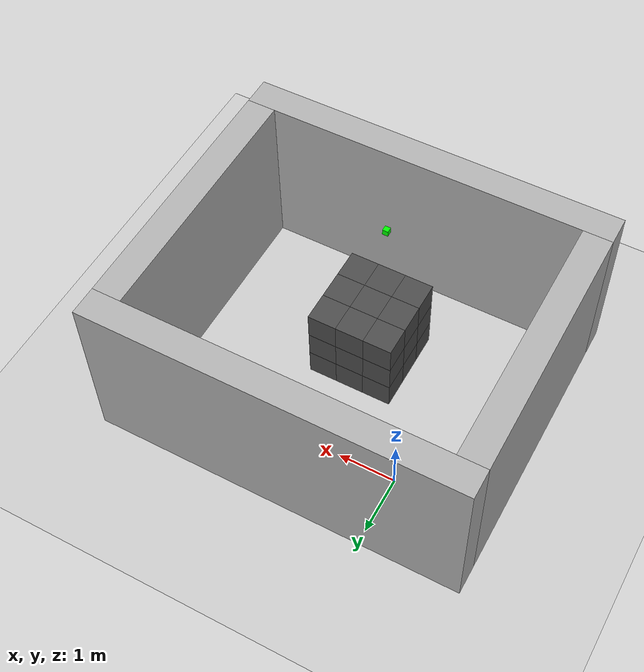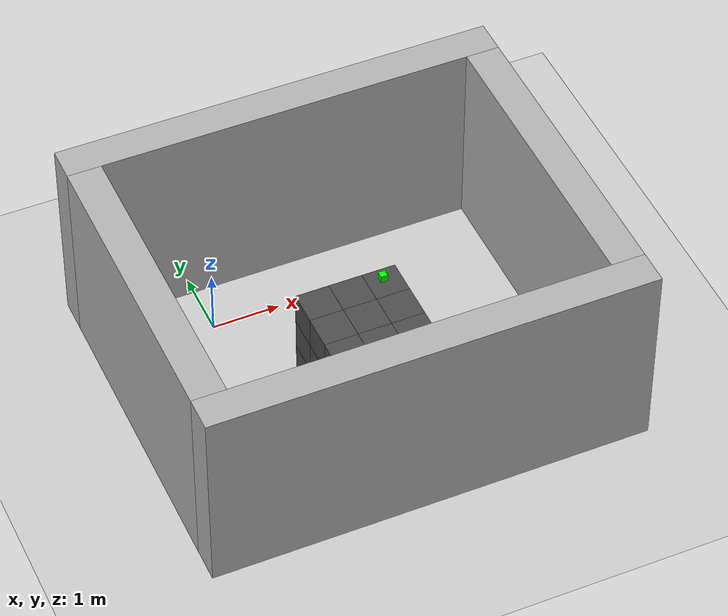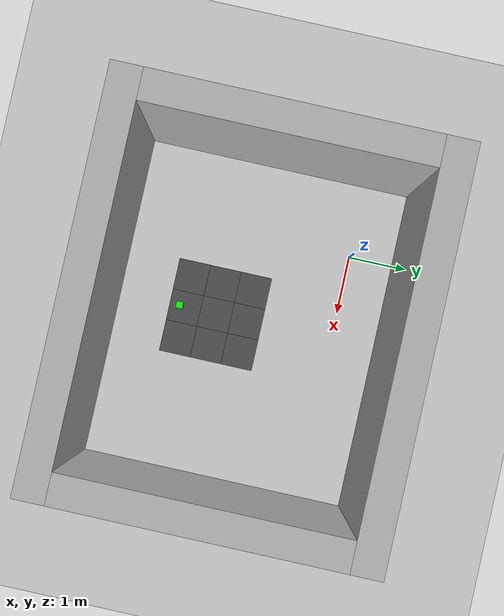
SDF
<sdf version="1.6">
 <world name="default">
  <light name="sun" type="directional">
   <cast_shadows>0</cast_shadows>
   <pose>0 0 10 0 -0 0</pose>
   <diffuse>0.8 0.8 0.8 1</diffuse>
   <specular>0.2 0.2 0.2 1</specular>
   <attenuation>
    <range>1000</range>
    <constant>0.9</constant>
    <linear>0.01</linear>
    <quadratic>0.001</quadratic>
   </attenuation>
   <direction>-0.5 0.1 -0.9</direction>
  </light>
  <include><uri>model://ground_plane</uri></include>
  <gravity>0 0 -9.8</gravity>
  <magnetic_field>6e-06 2.3e-05 -4.2e-05</magnetic_field>
  <atmosphere type="adiabatic"/>
  <physics default="0" name="default_physics" type="ode">
   <max_step_size>0.001</max_step_size>
   <real_time_factor>1</real_time_factor>
   <real_time_update_rate>1000</real_time_update_rate>
  </physics>
  <scene><ambient>0.4 0.4 0.4 1</ambient><background>0.7 0.7 0.7 1</background><shadows>0</shadows></scene>
  <spherical_coordinates>
   <surface_model>EARTH_WGS84</surface_model>
   <latitude_deg>0</latitude_deg>
   <longitude_deg>0</longitude_deg>
   <elevation>0</elevation>
   <heading_deg>0</heading_deg>
  </spherical_coordinates>
  <model name="concrete_wall_0">
   <pose frame="sim_world">-1.5 -1.5 1.5 0 0 0</pose>
   <static>True</static>
   <link name="concrete_wall_0_link">
    <inertial>
     <mass>100</mass>
     <inertia>
      <ixx>0.166667</ixx>
      <ixy>0</ixy>
      <ixz>0</ixz>
      <iyy>0.166667</iyy>
      <iyz>0</iyz>
      <izz>0.166667</izz>
     </inertia>
    </inertial>
    <collision name="concrete_wall_0_collision">
     <geometry><box><size>0.5 4.5 3.0</size></box></geometry>
     <max_contacts>100</max_contacts>
    </collision>
    <visual name="concrete_wall_0_visual">
     <geometry><box><size>0.5 4.5 3.0</size></box></geometry>
     <material><ambient>0.7 0.7 0.7 1</ambient><diffuse>0.7 0.7 0.7 1</diffuse></material>
    </visual>
   </link>
  </model>
  <model name="concrete_wall_1">
   <pose frame="sim_world">4.5 -1.5 1.5 0 0 0</pose>
   <static>True</static>
   <link name="concrete_wall_1_link">
    <inertial>
     <mass>100</mass>
     <inertia>
      <ixx>0.166667</ixx>
      <ixy>0</ixy>
      <ixz>0</ixz>
      <iyy>0.166667</iyy>
      <iyz>0</iyz>
      <izz>0.166667</izz>
     </inertia>
    </inertial>
    <collision name="concrete_wall_1_collision">
     <geometry><box><size>0.5 4.5 3.0</size></box></geometry>
     <max_contacts>100</max_contacts>
    </collision>
    <visual name="concrete_wall_1_visual">
     <geometry><box><size>0.5 4.5 3.0</size></box></geometry>
     <material><ambient>0.7 0.7 0.7 1</ambient><diffuse>0.7 0.7 0.7 1</diffuse></material>
    </visual>
   </link>
  </model>
  <model name="concrete_wall_2">
   <pose frame="sim_world">1.5 -4.0 1.5 0 0 0</pose>
   <static>True</static>
   <link name="concrete_wall_2_link">
    <inertial>
     <mass>100</mass>
     <inertia>
      <ixx>0.166667</ixx>
      <ixy>0</ixy>
      <ixz>0</ixz>
      <iyy>0.166667</iyy>
      <iyz>0</iyz>
      <izz>0.166667</izz>
     </inertia>
    </inertial>
    <collision name="concrete_wall_2_collision">
     <geometry><box><size>6.5 0.5 3.0</size></box></geometry>
     <max_contacts>100</max_contacts>
    </collision>
    <visual name="concrete_wall_2_visual">
     <geometry><box><size>6.5 0.5 3.0</size></box></geometry>
     <material><ambient>0.7 0.7 0.7 1</ambient><diffuse>0.7 0.7 0.7 1</diffuse></material>
    </visual>
   </link>
  </model>
  <model name="concrete_wall_3">
   <pose frame="sim_world">1.5 1.0 1.5 0 0 0</pose>
   <static>True</static>
   <link name="concrete_wall_3_link">
    <inertial>
     <mass>100</mass>
     <inertia>
      <ixx>0.166667</ixx>
      <ixy>0</ixy>
      <ixz>0</ixz>
      <iyy>0.166667</iyy>
      <iyz>0</iyz>
      <izz>0.166667</izz>
     </inertia>
    </inertial>
    <collision name="concrete_wall_3_collision">
     <geometry><box><size>6.5 0.5 3.0</size></box></geometry>
     <max_contacts>100</max_contacts>
    </collision>
    <visual name="concrete_wall_3_visual">
     <geometry><box><size>6.5 0.5 3.0</size></box></geometry>
     <material><ambient>0.7 0.7 0.7 1</ambient><diffuse>0.7 0.7 0.7 1</diffuse></material>
    </visual>
   </link>
  </model>
  <model name="water_0">
   <pose frame="sim_world">1.0 -2.5 0.25 0 -0 0</pose>
   <static>True</static>
   <link name="water_0_link">
    <inertial>
     <mass>100</mass>
     <inertia>
      <ixx>0.166667</ixx>
      <ixy>0</ixy>
      <ixz>0</ixz>
      <iyy>0.166667</iyy>
      <iyz>0</iyz>
      <izz>0.166667</izz>
     </inertia>
    </inertial>
    <collision name="water_0_collision">
     <geometry><box><size>0.5 0.5 0.5</size></box></geometry>
     <max_contacts>100</max_contacts>
    </collision>
    <visual name="water_0_visual">
     <geometry><box><size>0.5 0.5 0.5</size></box></geometry>
     <material><ambient>0.3 0.3 0.3 1</ambient><diffuse>0.3 0.3 0.3 1</diffuse></material>
    </visual>
   </link>
  </model>
  <model name="water_1">
   <pose frame="sim_world">1.0 -2.5 0.75 0 -0 0</pose>
   <static>True</static>
   <link name="water_1_link">
    <inertial>
     <mass>100</mass>
     <inertia>
      <ixx>0.166667</ixx>
      <ixy>0</ixy>
      <ixz>0</ixz>
      <iyy>0.166667</iyy>
      <iyz>0</iyz>
      <izz>0.166667</izz>
     </inertia>
    </inertial>
    <collision name="water_1_collision">
     <geometry><box><size>0.5 0.5 0.5</size></box></geometry>
     <max_contacts>100</max_contacts>
    </collision>
    <visual name="water_1_visual">
     <geometry><box><size>0.5 0.5 0.5</size></box></geometry>
     <material><ambient>0.3 0.3 0.3 1</ambient><diffuse>0.3 0.3 0.3 1</diffuse></material>
    </visual>
   </link>
  </model>
  <model name="water_2">
   <pose frame="sim_world">1.0 -2.5 1.25 0 -0 0</pose>
   <static>True</static>
   <link name="water_2_link">
    <inertial>
     <mass>100</mass>
     <inertia>
      <ixx>0.166667</ixx>
      <ixy>0</ixy>
      <ixz>0</ixz>
      <iyy>0.166667</iyy>
      <iyz>0</iyz>
      <izz>0.166667</izz>
     </inertia>
    </inertial>
    <collision name="water_2_collision">
     <geometry><box><size>0.5 0.5 0.5</size></box></geometry>
     <max_contacts>100</max_contacts>
    </collision>
    <visual name="water_2_visual">
     <geometry><box><size>0.5 0.5 0.5</size></box></geometry>
     <material><ambient>0.3 0.3 0.3 1</ambient><diffuse>0.3 0.3 0.3 1</diffuse></material>
    </visual>
   </link>
  </model>
  <model name="water_3">
   <pose frame="sim_world">1.0 -2.0 0.25 0 -0 0</pose>
   <static>True</static>
   <link name="water_3_link">
    <inertial>
     <mass>100</mass>
     <inertia>
      <ixx>0.166667</ixx>
      <ixy>0</ixy>
      <ixz>0</ixz>
      <iyy>0.166667</iyy>
      <iyz>0</iyz>
      <izz>0.166667</izz>
     </inertia>
    </inertial>
    <collision name="water_3_collision">
     <geometry><box><size>0.5 0.5 0.5</size></box></geometry>
     <max_contacts>100</max_contacts>
    </collision>
    <visual name="water_3_visual">
     <geometry><box><size>0.5 0.5 0.5</size></box></geometry>
     <material><ambient>0.3 0.3 0.3 1</ambient><diffuse>0.3 0.3 0.3 1</diffuse></material>
    </visual>
   </link>
  </model>
  <model name="water_4">
   <pose frame="sim_world">1.0 -2.0 0.75 0 -0 0</pose>
   <static>True</static>
   <link name="water_4_link">
    <inertial>
     <mass>100</mass>
     <inertia>
      <ixx>0.166667</ixx>
      <ixy>0</ixy>
      <ixz>0</ixz>
      <iyy>0.166667</iyy>
      <iyz>0</iyz>
      <izz>0.166667</izz>
     </inertia>
    </inertial>
    <collision name="water_4_collision">
     <geometry><box><size>0.5 0.5 0.5</size></box></geometry>
     <max_contacts>100</max_contacts>
    </collision>
    <visual name="water_4_visual">
     <geometry><box><size>0.5 0.5 0.5</size></box></geometry>
     <material><ambient>0.3 0.3 0.3 1</ambient><diffuse>0.3 0.3 0.3 1</diffuse></material>
    </visual>
   </link>
  </model>
  <model name="water_5">
   <pose frame="sim_world">1.0 -2.0 1.25 0 -0 0</pose>
   <static>True</static>
   <link name="water_5_link">
    <inertial>
     <mass>100</mass>
     <inertia>
      <ixx>0.166667</ixx>
      <ixy>0</ixy>
      <ixz>0</ixz>
      <iyy>0.166667</iyy>
      <iyz>0</iyz>
      <izz>0.166667</izz>
     </inertia>
    </inertial>
    <collision name="water_5_collision">
     <geometry><box><size>0.5 0.5 0.5</size></box></geometry>
     <max_contacts>100</max_contacts>
    </collision>
    <visual name="water_5_visual">
     <geometry><box><size>0.5 0.5 0.5</size></box></geometry>
     <material><ambient>0.3 0.3 0.3 1</ambient><diffuse>0.3 0.3 0.3 1</diffuse></material>
    </visual>
   </link>
  </model>
  <model name="water_6">
   <pose frame="sim_world">1.0 -1.5 0.25 0 -0 0</pose>
   <static>True</static>
   <link name="water_6_link">
    <inertial>
     <mass>100</mass>
     <inertia>
      <ixx>0.166667</ixx>
      <ixy>0</ixy>
      <ixz>0</ixz>
      <iyy>0.166667</iyy>
      <iyz>0</iyz>
      <izz>0.166667</izz>
     </inertia>
    </inertial>
    <collision name="water_6_collision">
     <geometry><box><size>0.5 0.5 0.5</size></box></geometry>
     <max_contacts>100</max_contacts>
    </collision>
    <visual name="water_6_visual">
     <geometry><box><size>0.5 0.5 0.5</size></box></geometry>
     <material><ambient>0.3 0.3 0.3 1</ambient><diffuse>0.3 0.3 0.3 1</diffuse></material>
    </visual>
   </link>
  </model>
  <model name="water_7">
   <pose frame="sim_world">1.0 -1.5 0.75 0 -0 0</pose>
   <static>True</static>
   <link name="water_7_link">
    <inertial>
     <mass>100</mass>
     <inertia>
      <ixx>0.166667</ixx>
      <ixy>0</ixy>
      <ixz>0</ixz>
      <iyy>0.166667</iyy>
      <iyz>0</iyz>
      <izz>0.166667</izz>
     </inertia>
    </inertial>
    <collision name="water_7_collision">
     <geometry><box><size>0.5 0.5 0.5</size></box></geometry>
     <max_contacts>100</max_contacts>
    </collision>
    <visual name="water_7_visual">
     <geometry><box><size>0.5 0.5 0.5</size></box></geometry>
     <material><ambient>0.3 0.3 0.3 1</ambient><diffuse>0.3 0.3 0.3 1</diffuse></material>
    </visual>
   </link>
  </model>
  <model name="water_8">
   <pose frame="sim_world">1.0 -1.5 1.25 0 -0 0</pose>
   <static>True</static>
   <link name="water_8_link">
    <inertial>
     <mass>100</mass>
     <inertia>
      <ixx>0.166667</ixx>
      <ixy>0</ixy>
      <ixz>0</ixz>
      <iyy>0.166667</iyy>
      <iyz>0</iyz>
      <izz>0.166667</izz>
     </inertia>
    </inertial>
    <collision name="water_8_collision">
     <geometry><box><size>0.5 0.5 0.5</size></box></geometry>
     <max_contacts>100</max_contacts>
    </collision>
    <visual name="water_8_visual">
     <geometry><box><size>0.5 0.5 0.5</size></box></geometry>
     <material><ambient>0.3 0.3 0.3 1</ambient><diffuse>0.3 0.3 0.3 1</diffuse></material>
    </visual>
   </link>
  </model>
  <model name="water_9">
   <pose frame="sim_world">1.5 -2.5 0.25 0 -0 0</pose>
   <static>True</static>
   <link name="water_9_link">
    <inertial>
     <mass>100</mass>
     <inertia>
      <ixx>0.166667</ixx>
      <ixy>0</ixy>
      <ixz>0</ixz>
      <iyy>0.166667</iyy>
      <iyz>0</iyz>
      <izz>0.166667</izz>
     </inertia>
    </inertial>
    <collision name="water_9_collision">
     <geometry><box><size>0.5 0.5 0.5</size></box></geometry>
     <max_contacts>100</max_contacts>
    </collision>
    <visual name="water_9_visual">
     <geometry><box><size>0.5 0.5 0.5</size></box></geometry>
     <material><ambient>0.3 0.3 0.3 1</ambient><diffuse>0.3 0.3 0.3 1</diffuse></material>
    </visual>
   </link>
  </model>
  <model name="water_10">
   <pose frame="sim_world">1.5 -2.5 0.75 0 -0 0</pose>
   <static>True</static>
   <link name="water_10_link">
    <inertial>
     <mass>100</mass>
     <inertia>
      <ixx>0.166667</ixx>
      <ixy>0</ixy>
      <ixz>0</ixz>
      <iyy>0.166667</iyy>
      <iyz>0</iyz>
      <izz>0.166667</izz>
     </inertia>
    </inertial>
    <collision name="water_10_collision">
     <geometry><box><size>0.5 0.5 0.5</size></box></geometry>
     <max_contacts>100</max_contacts>
    </collision>
    <visual name="water_10_visual">
     <geometry><box><size>0.5 0.5 0.5</size></box></geometry>
     <material><ambient>0.3 0.3 0.3 1</ambient><diffuse>0.3 0.3 0.3 1</diffuse></material>
    </visual>
   </link>
   <model name="radiation_source_water_10">
    <pose>-1.72853469849e-06 -1.72853469849e-06 -1.72853469849e-06 0 0 0</pose>
    <static>true</static>
    <link name="link_radiation_source_water_10">
     <visual name="visual_radiation_source_water_10_0">
      <geometry><box><size>0.1 0.1 0.1</size></box></geometry>
      <material><ambient>1 0.0  0 1.0</ambient><diffuse>1 0.0  0 1.0</diffuse></material>
     </visual>
     <visual name="visual_radiation_source_water_10_1">
      <pose>0 0 2.0 0 0 0</pose>
      <geometry><box><size>0.1 0.1 0.1</size></box></geometry>
      <material><ambient>0 1.0  0 1.0</ambient><diffuse>0 1.0  0 1.0</diffuse></material>
     </visual>
     <sensor name="radiation_source_water_10" type="radiation_source">
      <always_on>1</always_on>
      <update_rate>100.0</update_rate>
      <topic>source_0/gamma</topic>
      <plugin filename="libradiation_source_plugin.so" name="radiation_source_plugin"/>
     </sensor>
    </link>
   </model>
  </model>
  <model name="water_11">
   <pose frame="sim_world">1.5 -2.5 1.25 0 -0 0</pose>
   <static>True</static>
   <link name="water_11_link">
    <inertial>
     <mass>100</mass>
     <inertia>
      <ixx>0.166667</ixx>
      <ixy>0</ixy>
      <ixz>0</ixz>
      <iyy>0.166667</iyy>
      <iyz>0</iyz>
      <izz>0.166667</izz>
     </inertia>
    </inertial>
    <collision name="water_11_collision">
     <geometry><box><size>0.5 0.5 0.5</size></box></geometry>
     <max_contacts>100</max_contacts>
    </collision>
    <visual name="water_11_visual">
     <geometry><box><size>0.5 0.5 0.5</size></box></geometry>
     <material><ambient>0.3 0.3 0.3 1</ambient><diffuse>0.3 0.3 0.3 1</diffuse></material>
    </visual>
   </link>
  </model>
  <model name="water_12">
   <pose frame="sim_world">1.5 -2.0 0.25 0 -0 0</pose>
   <static>True</static>
   <link name="water_12_link">
    <inertial>
     <mass>100</mass>
     <inertia>
      <ixx>0.166667</ixx>
      <ixy>0</ixy>
      <ixz>0</ixz>
      <iyy>0.166667</iyy>
      <iyz>0</iyz>
      <izz>0.166667</izz>
     </inertia>
    </inertial>
    <collision name="water_12_collision">
     <geometry><box><size>0.5 0.5 0.5</size></box></geometry>
     <max_contacts>100</max_contacts>
    </collision>
    <visual name="water_12_visual">
     <geometry><box><size>0.5 0.5 0.5</size></box></geometry>
     <material><ambient>0.3 0.3 0.3 1</ambient><diffuse>0.3 0.3 0.3 1</diffuse></material>
    </visual>
   </link>
  </model>
  <model name="water_13">
   <pose frame="sim_world">1.5 -2.0 0.75 0 -0 0</pose>
   <static>True</static>
   <link name="water_13_link">
    <inertial>
     <mass>100</mass>
     <inertia>
      <ixx>0.166667</ixx>
      <ixy>0</ixy>
      <ixz>0</ixz>
      <iyy>0.166667</iyy>
      <iyz>0</iyz>
      <izz>0.166667</izz>
     </inertia>
    </inertial>
    <collision name="water_13_collision">
     <geometry><box><size>0.5 0.5 0.5</size></box></geometry>
     <max_contacts>100</max_contacts>
    </collision>
    <visual name="water_13_visual">
     <geometry><box><size>0.5 0.5 0.5</size></box></geometry>
     <material><ambient>0.3 0.3 0.3 1</ambient><diffuse>0.3 0.3 0.3 1</diffuse></material>
    </visual>
   </link>
  </model>
  <model name="water_14">
   <pose frame="sim_world">1.5 -2.0 1.25 0 -0 0</pose>
   <static>True</static>
   <link name="water_14_link">
    <inertial>
     <mass>100</mass>
     <inertia>
      <ixx>0.166667</ixx>
      <ixy>0</ixy>
      <ixz>0</ixz>
      <iyy>0.166667</iyy>
      <iyz>0</iyz>
      <izz>0.166667</izz>
     </inertia>
    </inertial>
    <collision name="water_14_collision">
     <geometry><box><size>0.5 0.5 0.5</size></box></geometry>
     <max_contacts>100</max_contacts>
    </collision>
    <visual name="water_14_visual">
     <geometry><box><size>0.5 0.5 0.5</size></box></geometry>
     <material><ambient>0.3 0.3 0.3 1</ambient><diffuse>0.3 0.3 0.3 1</diffuse></material>
    </visual>
   </link>
  </model>
  <model name="water_15">
   <pose frame="sim_world">1.5 -1.5 0.25 0 -0 0</pose>
   <static>True</static>
   <link name="water_15_link">
    <inertial>
     <mass>100</mass>
     <inertia>
      <ixx>0.166667</ixx>
      <ixy>0</ixy>
      <ixz>0</ixz>
      <iyy>0.166667</iyy>
      <iyz>0</iyz>
      <izz>0.166667</izz>
     </inertia>
    </inertial>
    <collision name="water_15_collision">
     <geometry><box><size>0.5 0.5 0.5</size></box></geometry>
     <max_contacts>100</max_contacts>
    </collision>
    <visual name="water_15_visual">
     <geometry><box><size>0.5 0.5 0.5</size></box></geometry>
     <material><ambient>0.3 0.3 0.3 1</ambient><diffuse>0.3 0.3 0.3 1</diffuse></material>
    </visual>
   </link>
  </model>
  <model name="water_16">
   <pose frame="sim_world">1.5 -1.5 0.75 0 -0 0</pose>
   <static>True</static>
   <link name="water_16_link">
    <inertial>
     <mass>100</mass>
     <inertia>
      <ixx>0.166667</ixx>
      <ixy>0</ixy>
      <ixz>0</ixz>
      <iyy>0.166667</iyy>
      <iyz>0</iyz>
      <izz>0.166667</izz>
     </inertia>
    </inertial>
    <collision name="water_16_collision">
     <geometry><box><size>0.5 0.5 0.5</size></box></geometry>
     <max_contacts>100</max_contacts>
    </collision>
    <visual name="water_16_visual">
     <geometry><box><size>0.5 0.5 0.5</size></box></geometry>
     <material><ambient>0.3 0.3 0.3 1</ambient><diffuse>0.3 0.3 0.3 1</diffuse></material>
    </visual>
   </link>
  </model>
  <model name="water_17">
   <pose frame="sim_world">1.5 -1.5 1.25 0 -0 0</pose>
   <static>True</static>
   <link name="water_17_link">
    <inertial>
     <mass>100</mass>
     <inertia>
      <ixx>0.166667</ixx>
      <ixy>0</ixy>
      <ixz>0</ixz>
      <iyy>0.166667</iyy>
      <iyz>0</iyz>
      <izz>0.166667</izz>
     </inertia>
    </inertial>
    <collision name="water_17_collision">
     <geometry><box><size>0.5 0.5 0.5</size></box></geometry>
     <max_contacts>100</max_contacts>
    </collision>
    <visual name="water_17_visual">
     <geometry><box><size>0.5 0.5 0.5</size></box></geometry>
     <material><ambient>0.3 0.3 0.3 1</ambient><diffuse>0.3 0.3 0.3 1</diffuse></material>
    </visual>
   </link>
  </model>
  <model name="water_18">
   <pose frame="sim_world">2.0 -2.5 0.25 0 -0 0</pose>
   <static>True</static>
   <link name="water_18_link">
    <inertial>
     <mass>100</mass>
     <inertia>
      <ixx>0.166667</ixx>
      <ixy>0</ixy>
      <ixz>0</ixz>
      <iyy>0.166667</iyy>
      <iyz>0</iyz>
      <izz>0.166667</izz>
     </inertia>
    </inertial>
    <collision name="water_18_collision">
     <geometry><box><size>0.5 0.5 0.5</size></box></geometry>
     <max_contacts>100</max_contacts>
    </collision>
    <visual name="water_18_visual">
     <geometry><box><size>0.5 0.5 0.5</size></box></geometry>
     <material><ambient>0.3 0.3 0.3 1</ambient><diffuse>0.3 0.3 0.3 1</diffuse></material>
    </visual>
   </link>
  </model>
  <model name="water_19">
   <pose frame="sim_world">2.0 -2.5 0.75 0 -0 0</pose>
   <static>True</static>
   <link name="water_19_link">
    <inertial>
     <mass>100</mass>
     <inertia>
      <ixx>0.166667</ixx>
      <ixy>0</ixy>
      <ixz>0</ixz>
      <iyy>0.166667</iyy>
      <iyz>0</iyz>
      <izz>0.166667</izz>
     </inertia>
    </inertial>
    <collision name="water_19_collision">
     <geometry><box><size>0.5 0.5 0.5</size></box></geometry>
     <max_contacts>100</max_contacts>
    </collision>
    <visual name="water_19_visual">
     <geometry><box><size>0.5 0.5 0.5</size></box></geometry>
     <material><ambient>0.3 0.3 0.3 1</ambient><diffuse>0.3 0.3 0.3 1</diffuse></material>
    </visual>
   </link>
  </model>
  <model name="water_20">
   <pose frame="sim_world">2.0 -2.5 1.25 0 -0 0</pose>
   <static>True</static>
   <link name="water_20_link">
    <inertial>
     <mass>100</mass>
     <inertia>
      <ixx>0.166667</ixx>
      <ixy>0</ixy>
      <ixz>0</ixz>
      <iyy>0.166667</iyy>
      <iyz>0</iyz>
      <izz>0.166667</izz>
     </inertia>
    </inertial>
    <collision name="water_20_collision">
     <geometry><box><size>0.5 0.5 0.5</size></box></geometry>
     <max_contacts>100</max_contacts>
    </collision>
    <visual name="water_20_visual">
     <geometry><box><size>0.5 0.5 0.5</size></box></geometry>
     <material><ambient>0.3 0.3 0.3 1</ambient><diffuse>0.3 0.3 0.3 1</diffuse></material>
    </visual>
   </link>
  </model>
  <model name="water_21">
   <pose frame="sim_world">2.0 -2.0 0.25 0 -0 0</pose>
   <static>True</static>
   <link name="water_21_link">
    <inertial>
     <mass>100</mass>
     <inertia>
      <ixx>0.166667</ixx>
      <ixy>0</ixy>
      <ixz>0</ixz>
      <iyy>0.166667</iyy>
      <iyz>0</iyz>
      <izz>0.166667</izz>
     </inertia>
    </inertial>
    <collision name="water_21_collision">
     <geometry><box><size>0.5 0.5 0.5</size></box></geometry>
     <max_contacts>100</max_contacts>
    </collision>
    <visual name="water_21_visual">
     <geometry><box><size>0.5 0.5 0.5</size></box></geometry>
     <material><ambient>0.3 0.3 0.3 1</ambient><diffuse>0.3 0.3 0.3 1</diffuse></material>
    </visual>
   </link>
  </model>
  <model name="water_22">
   <pose frame="sim_world">2.0 -2.0 0.75 0 -0 0</pose>
   <static>True</static>
   <link name="water_22_link">
    <inertial>
     <mass>100</mass>
     <inertia>
      <ixx>0.166667</ixx>
      <ixy>0</ixy>
      <ixz>0</ixz>
      <iyy>0.166667</iyy>
      <iyz>0</iyz>
      <izz>0.166667</izz>
     </inertia>
    </inertial>
    <collision name="water_22_collision">
     <geometry><box><size>0.5 0.5 0.5</size></box></geometry>
     <max_contacts>100</max_contacts>
    </collision>
    <visual name="water_22_visual">
     <geometry><box><size>0.5 0.5 0.5</size></box></geometry>
     <material><ambient>0.3 0.3 0.3 1</ambient><diffuse>0.3 0.3 0.3 1</diffuse></material>
    </visual>
   </link>
  </model>
  <model name="water_23">
   <pose frame="sim_world">2.0 -2.0 1.25 0 -0 0</pose>
   <static>True</static>
   <link name="water_23_link">
    <inertial>
     <mass>100</mass>
     <inertia>
      <ixx>0.166667</ixx>
      <ixy>0</ixy>
      <ixz>0</ixz>
      <iyy>0.166667</iyy>
      <iyz>0</iyz>
      <izz>0.166667</izz>
     </inertia>
    </inertial>
    <collision name="water_23_collision">
     <geometry><box><size>0.5 0.5 0.5</size></box></geometry>
     <max_contacts>100</max_contacts>
    </collision>
    <visual name="water_23_visual">
     <geometry><box><size>0.5 0.5 0.5</size></box></geometry>
     <material><ambient>0.3 0.3 0.3 1</ambient><diffuse>0.3 0.3 0.3 1</diffuse></material>
    </visual>
   </link>
  </model>
  <model name="water_24">
   <pose frame="sim_world">2.0 -1.5 0.25 0 -0 0</pose>
   <static>True</static>
   <link name="water_24_link">
    <inertial>
     <mass>100</mass>
     <inertia>
      <ixx>0.166667</ixx>
      <ixy>0</ixy>
      <ixz>0</ixz>
      <iyy>0.166667</iyy>
      <iyz>0</iyz>
      <izz>0.166667</izz>
     </inertia>
    </inertial>
    <collision name="water_24_collision">
     <geometry><box><size>0.5 0.5 0.5</size></box></geometry>
     <max_contacts>100</max_contacts>
    </collision>
    <visual name="water_24_visual">
     <geometry><box><size>0.5 0.5 0.5</size></box></geometry>
     <material><ambient>0.3 0.3 0.3 1</ambient><diffuse>0.3 0.3 0.3 1</diffuse></material>
    </visual>
   </link>
  </model>
  <model name="water_25">
   <pose frame="sim_world">2.0 -1.5 0.75 0 -0 0</pose>
   <static>True</static>
   <link name="water_25_link">
    <inertial>
     <mass>100</mass>
     <inertia>
      <ixx>0.166667</ixx>
      <ixy>0</ixy>
      <ixz>0</ixz>
      <iyy>0.166667</iyy>
      <iyz>0</iyz>
      <izz>0.166667</izz>
     </inertia>
    </inertial>
    <collision name="water_25_collision">
     <geometry><box><size>0.5 0.5 0.5</size></box></geometry>
     <max_contacts>100</max_contacts>
    </collision>
    <visual name="water_25_visual">
     <geometry><box><size>0.5 0.5 0.5</size></box></geometry>
     <material><ambient>0.3 0.3 0.3 1</ambient><diffuse>0.3 0.3 0.3 1</diffuse></material>
    </visual>
   </link>
  </model>
  <model name="water_26">
   <pose frame="sim_world">2.0 -1.5 1.25 0 -0 0</pose>
   <static>True</static>
   <link name="water_26_link">
    <inertial>
     <mass>100</mass>
     <inertia>
      <ixx>0.166667</ixx>
      <ixy>0</ixy>
      <ixz>0</ixz>
      <iyy>0.166667</iyy>
      <iyz>0</iyz>
      <izz>0.166667</izz>
     </inertia>
    </inertial>
    <collision name="water_26_collision">
     <geometry><box><size>0.5 0.5 0.5</size></box></geometry>
     <max_contacts>100</max_contacts>
    </collision>
    <visual name="water_26_visual">
     <geometry><box><size>0.5 0.5 0.5</size></box></geometry>
     <material><ambient>0.3 0.3 0.3 1</ambient><diffuse>0.3 0.3 0.3 1</diffuse></material>
    </visual>
   </link>
  </model>
  <include><uri>model://ground_plane</uri></include>
  <model name="ground_plane"><link name="ground_plane"/></model>
 </world>
</sdf>
